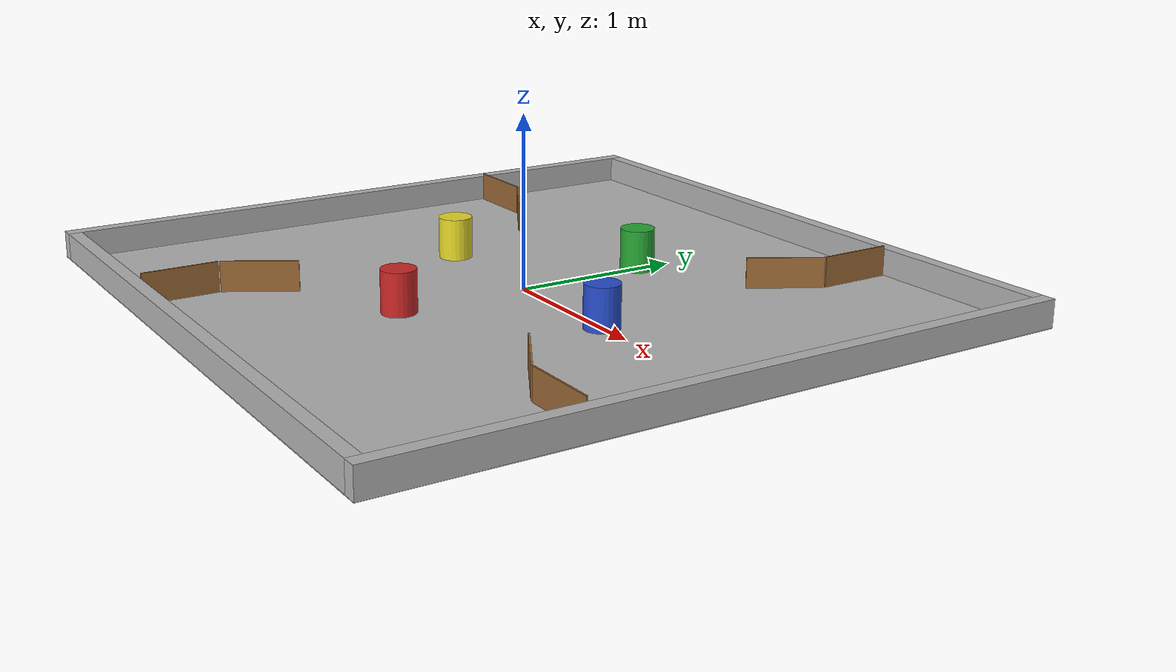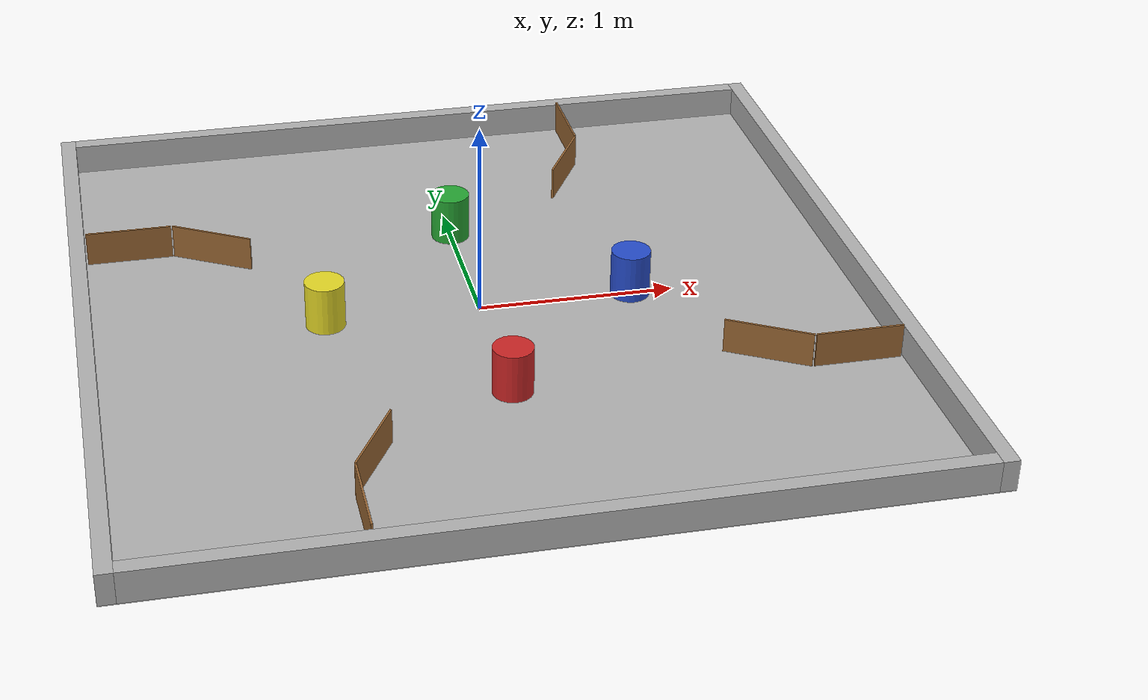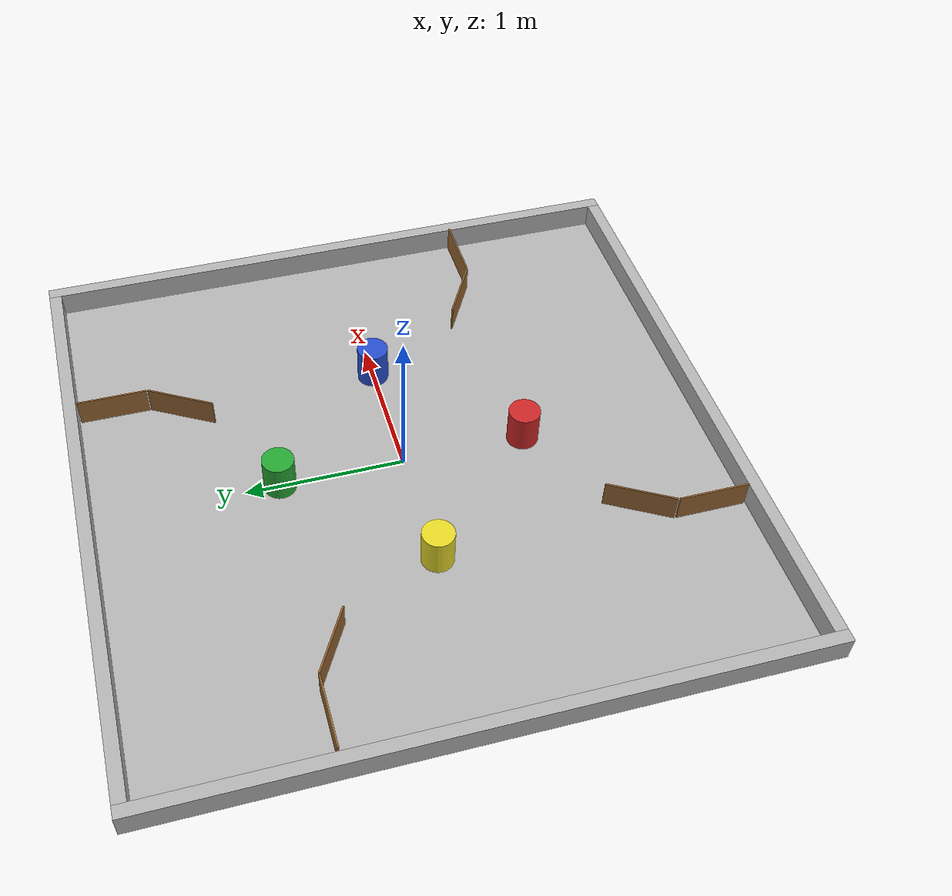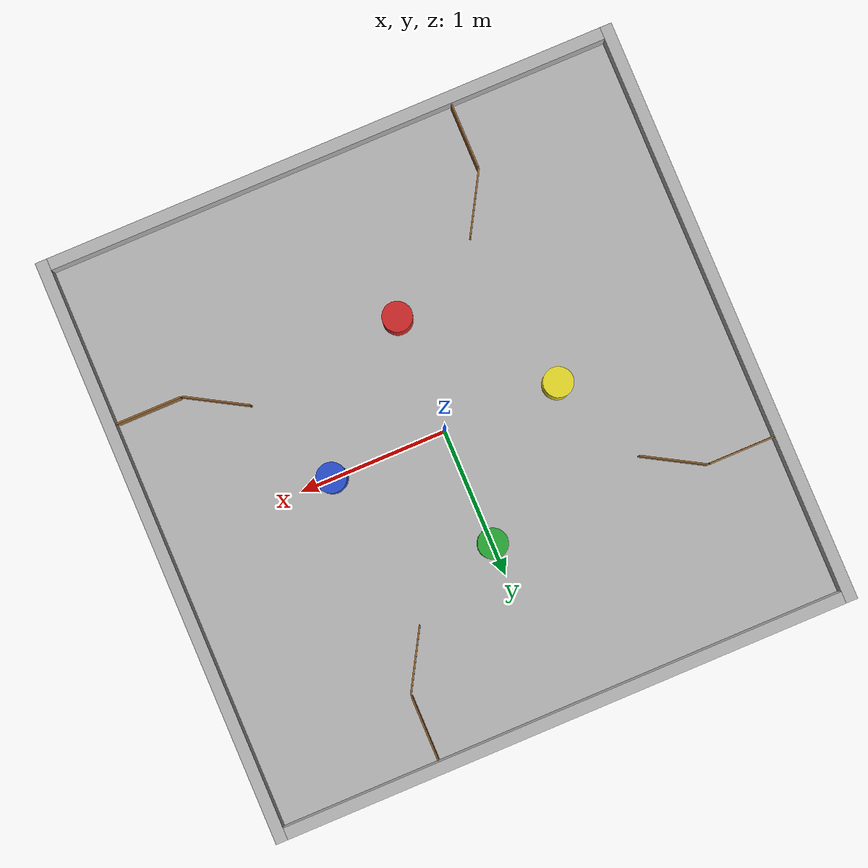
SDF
<?xml version="1.0"?>
<sdf version="1.6">
  <world name="default">

    <plugin
      filename="gz-sim-physics-system"
      name="gz::sim::systems::Physics">
    </plugin>
    <plugin
      filename="gz-sim-user-commands-system"
      name="gz::sim::systems::UserCommands">
    </plugin>
    <plugin
      filename="gz-sim-scene-broadcaster-system"
      name="gz::sim::systems::SceneBroadcaster">
    </plugin>
    <plugin
      filename="gz-sim-sensors-system"
      name="gz::sim::systems::Sensors">
      <render_engine>ogre2</render_engine>
    </plugin>
    <plugin
      filename="gz-sim-imu-system"
      name="gz::sim::systems::Imu">
    </plugin>

    <include>
      <uri>model://twelve_zone_floor</uri>
    </include>

    <include>
      <uri>https://fuel.gazebosim.org/1.0/OpenRobotics/models/Sun</uri>
    </include>

    <scene>
      <shadows>false</shadows>
    </scene>

    <physics type="ode">
      <real_time_update_rate>1000.0</real_time_update_rate>
      <max_step_size>0.001</max_step_size>
      <real_time_factor>1</real_time_factor>
      <ode>
        <solver>
          <type>quick</type>
          <iters>150</iters>
          <precon_iters>0</precon_iters>
          <sor>1.400000</sor>
          <use_dynamic_moi_rescaling>1</use_dynamic_moi_rescaling>
        </solver>
        <constraints>
          <cfm>0.00001</cfm>
          <erp>0.2</erp>
          <contact_max_correcting_vel>2000.000000</contact_max_correcting_vel>
          <contact_surface_layer>0.01000</contact_surface_layer>
        </constraints>
      </ode>
    </physics>

    <include>
      <uri>model://cr5_arena_walls</uri>
    </include>

    <include>
      <uri>model://wooden_wall_short</uri>
      <name>wall_1</name>
      <pose>-1.69 0.85 0 0 0 0</pose>
    </include>

    <include>
      <uri>model://wooden_wall_short</uri>
      <name>wall_2</name>
      <pose>-1.27 0.74 0 0 0 -0.5236</pose>
    </include>

    <include>
      <uri>model://wooden_wall_short</uri>
      <name>wall_3</name>
      <pose>0.85 1.69 0 0 0 1.571</pose>
    </include>

    <include>
      <uri>model://wooden_wall_short</uri>
      <name>wall_4</name>
      <pose>0.74 1.27 0 0 0 1.0472</pose>
    </include>

    <include>
      <uri>model://wooden_wall_short</uri>
      <name>wall_5</name>
      <pose>1.69 -0.85 0 0 0 0</pose>
    </include>

    <include>
      <uri>model://wooden_wall_short</uri>
      <name>wall_6</name>
      <pose>1.27 -0.74 0 0 0 -0.5236</pose>
    </include>

    <include>
      <uri>model://wooden_wall_short</uri>
      <name>wall_7</name>
      <pose>-0.85 -1.69 0 0 0 1.571</pose>
    </include>

    <include>
      <uri>model://wooden_wall_short</uri>
      <name>wall_8</name>
      <pose>-0.74 -1.27 0 0 0 1.0472</pose>
    </include>

    <include>
      <uri>model://beacon_green</uri>
      <pose>0 0.78 0 0 0 0</pose>
    </include>

    <include>
      <uri>model://beacon_blue</uri>
      <pose>0.78 0 0 0 0 0</pose>
    </include>

    <include>
      <uri>model://beacon_red</uri>
      <pose>0 -0.78 0 0 0 0</pose>
    </include>

    <include>
      <uri>model://beacon_yellow</uri>
      <pose>-0.78 0 0 0 0 0</pose>
    </include>

  </world>
</sdf>

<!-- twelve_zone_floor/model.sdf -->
<sdf version="1.4">
<model name="twelve_zone_floor">
  <static>true</static>
    <link name="floor">
      <collision name="collision">
        <geometry>
          <plane>
            <normal>0 0 1</normal>
            <size>4.0 4.0</size>
          </plane>
        </geometry>
        <surface>
          <friction>
            <ode>
              <mu>100</mu>
              <mu2>50</mu2>
            </ode>
          </friction>
        </surface>
      </collision>
      <visual name="visual">
        <cast_shadows>false</cast_shadows>
        <geometry>
          <plane>
            <normal>0 0 1</normal>
            <size>4.0 4.0</size>
          </plane>
        </geometry>
        <material>
          <diffuse>0.7 0.7 0.7 1</diffuse>
          <pbr>
            <metal>
              <albedo_map>materials/textures/floor.png</albedo_map>
              <metalness>0.0</metalness>
              <roughness>0.5</roughness>
            </metal>
          </pbr>
        </material>
      </visual>
    </link>
  </model>
</sdf>

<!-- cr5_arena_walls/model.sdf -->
<sdf version='1.6'>
  <model name='cr5_arena_walls'>
    <static>true</static>
    <pose frame=''>0 0 0.08 0 0 0</pose>

    <link name='Right_Wall'>
      <pose frame=''>0 1.96 0 0 0 0</pose>
      <collision name='Right_Wall_Collision'>
        <geometry>
          <box>
            <size>3.84 0.08 0.16</size>
          </box>
        </geometry>
      </collision>
      <visual name='Right_Wall_Visual'>
        <geometry>
          <box>
            <size>3.84 0.08 0.16</size>
          </box>
        </geometry>
        <material>
          <!-- Light Grey -->
          <diffuse>0.7 0.7 0.7 1</diffuse>
          <pbr>
            <metal>
              <metalness>0.0</metalness>
              <roughness>0.9</roughness>
            </metal>
          </pbr>
        </material>
      </visual>
    </link>

    <link name='Back_Wall'>
      <pose frame=''>-1.96 0 0 0 0 0</pose>
      <collision name='Back_Wall_Collision'>
        <geometry>
          <box>
            <size>0.08 4.00 0.16</size>
          </box>
        </geometry>
      </collision>
      <visual name='Back_Wall_Visual'>
        <geometry>
          <box>
            <size>0.08 4.00 0.16</size>
          </box>
        </geometry>
        <material>
          <!-- Light Grey -->
          <diffuse>0.7 0.7 0.7 1</diffuse>
          <pbr>
            <metal>
              <metalness>0.0</metalness>
              <roughness>0.9</roughness>
            </metal>
          </pbr>
        </material>
      </visual>
    </link>

    <link name='Left_Wall'>
      <pose frame=''>0 -1.96 0 0 0 0</pose>
      <collision name='Left_Wall_Collision'>
        <geometry>
          <box>
            <size>3.84 0.08 0.16</size>
          </box>
        </geometry>
      </collision>
      <visual name='Left_Wall_Visual'>
        <geometry>
          <box>
            <size>3.84 0.08 0.16</size>
          </box>
        </geometry>
        <material>
          <!-- Light Grey -->
          <diffuse>0.7 0.7 0.7 1</diffuse>
          <pbr>
            <metal>
              <metalness>0.0</metalness>
              <roughness>0.9</roughness>
            </metal>
          </pbr>
        </material>
      </visual>
    </link>

    <link name='Front_Wall'>
      <pose frame=''>1.96 0 0 0 0 0</pose>
      <collision name='Front_Wall_Collision'>
        <geometry>
          <box>
            <size>0.08 4.00 0.16</size>
          </box>
        </geometry>
      </collision>
      <visual name='Front_Wall_Visual'>
        <geometry>
          <box>
            <size>0.08 4.00 0.16</size>
          </box>
        </geometry>
        <material>
          <!-- Light Grey -->
          <diffuse>0.7 0.7 0.7 1</diffuse>
          <pbr>
            <metal>
              <metalness>0.0</metalness>
              <roughness>0.9</roughness>
            </metal>
          </pbr>
        </material>
      </visual>
    </link>

  </model>
</sdf>

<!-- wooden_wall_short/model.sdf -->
<sdf version="1.6">
<model name="wooden_wall_1050_30_250">
  <static>false</static>
    <link name='wall'>
      <pose frame=''>0 0 0.09 0 0 0</pose>
      <collision name='coll'>
        <geometry>
          <box>
            <size>0.44 0.01 0.18</size>
          </box>
        </geometry>
      </collision>
      <visual name='vis'>
        <geometry>
          <box>
            <size>0.44 0.01 0.18</size>
          </box>
        </geometry>
        <material>
          <diffuse>0.6 0.4 0.2 1</diffuse>
          <pbr>
            <metal>
              <albedo_map>materials/textures/wood.jpg</albedo_map>
              <metalness>0.1</metalness>
              <roughness>0.8</roughness>
            </metal>
          </pbr>
        </material>
      </visual>
    </link>
  </model>
</sdf>

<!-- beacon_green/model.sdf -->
<sdf version="1.4">
<model name="beacon_green">
  <static>false</static>
  <link name='beacon_green'>
    <pose frame=''>0 0 0.125 0 0 0</pose>
    <collision name='coll'>
      <geometry>
        <cylinder>
          <radius>0.1</radius>
          <length>0.25</length>
        </cylinder>
      </geometry>
      <max_contacts>10</max_contacts>
    </collision>
    <visual name='vis'>
      <geometry>
        <cylinder>
          <radius>0.1</radius>
          <length>0.25</length>
        </cylinder>
      </geometry>
      <material>
        <script>
          <uri>file://media/materials/scripts/gazebo.material</uri>
          <name>Gazebo/Green</name>
        </script>
      </material>
    </visual>
  </link>
  </model>
</sdf>

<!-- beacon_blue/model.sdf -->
<sdf version="1.4">
<model name="beacon_blue">
  <static>false</static>
  <link name='beacon_blue'>
    <pose frame=''>0 0 0.125 0 0 0</pose>
    <collision name='coll'>
      <geometry>
        <cylinder>
          <radius>0.1</radius>
          <length>0.25</length>
        </cylinder>
      </geometry>
      <max_contacts>10</max_contacts>
    </collision>
    <visual name='vis'>
      <geometry>
        <cylinder>
          <radius>0.1</radius>
          <length>0.25</length>
        </cylinder>
      </geometry>
      <material>
        <script>
          <uri>file://media/materials/scripts/gazebo.material</uri>
          <name>Gazebo/Blue</name>
        </script>
      </material>
    </visual>
  </link>
  </model>
</sdf>

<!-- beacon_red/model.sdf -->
<sdf version="1.4">
<model name="beacon_red">
  <static>false</static>
  <link name='beacon_red'>
    <pose frame=''>0 0 0.125 0 0 0</pose>
    <collision name='coll'>
      <geometry>
        <cylinder>
          <radius>0.1</radius>
          <length>0.25</length>
        </cylinder>
      </geometry>
      <max_contacts>10</max_contacts>
    </collision>
    <visual name='vis'>
      <geometry>
        <cylinder>
          <radius>0.1</radius>
          <length>0.25</length>
        </cylinder>
      </geometry>
      <material>
        <script>
          <uri>file://media/materials/scripts/gazebo.material</uri>
          <name>Gazebo/Red</name>
        </script>
      </material>
    </visual>
  </link>
  </model>
</sdf>

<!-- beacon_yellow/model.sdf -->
<sdf version="1.4">
<model name="beacon_yellow">
  <static>false</static>
  <link name='beacon_yellow'>
    <pose frame=''>0 0 0.125 0 0 0</pose>
    <collision name='coll'>
      <geometry>
        <cylinder>
          <radius>0.1</radius>
          <length>0.25</length>
        </cylinder>
      </geometry>
      <max_contacts>10</max_contacts>
    </collision>
    <visual name='vis'>
      <geometry>
        <cylinder>
          <radius>0.1</radius>
          <length>0.25</length>
        </cylinder>
      </geometry>
      <material>
        <script>
          <uri>file://media/materials/scripts/gazebo.material</uri>
          <name>Gazebo/Yellow</name>
        </script>
      </material>
    </visual>
  </link>
  </model>
</sdf>
